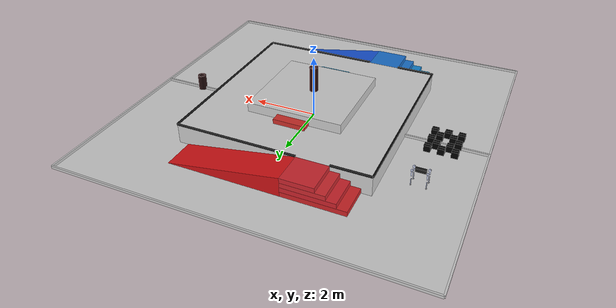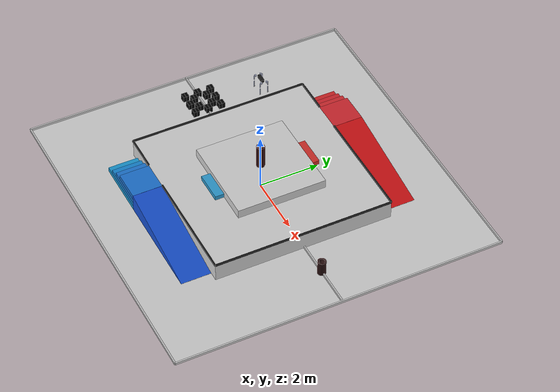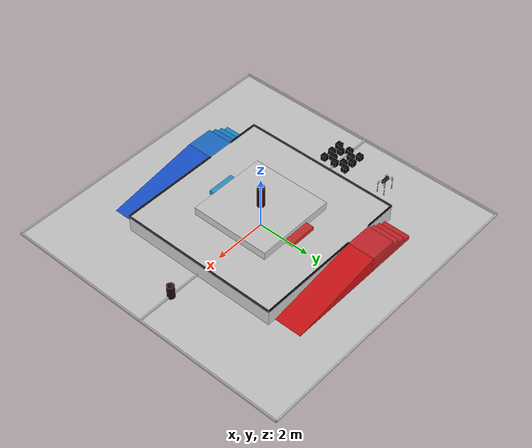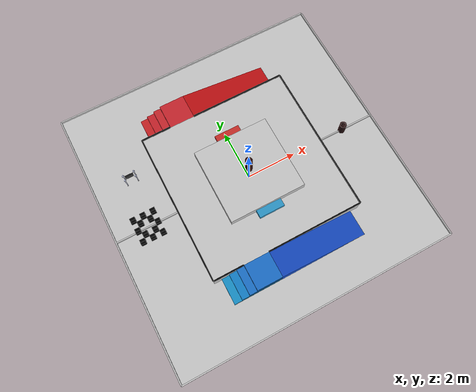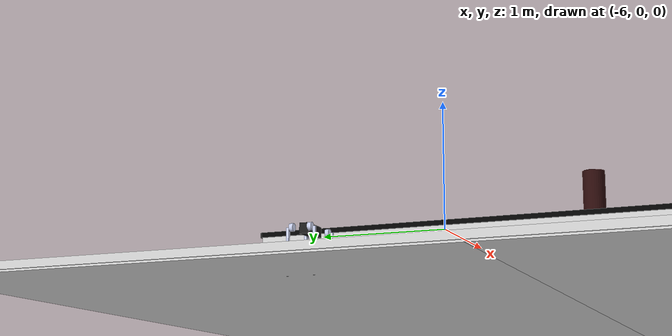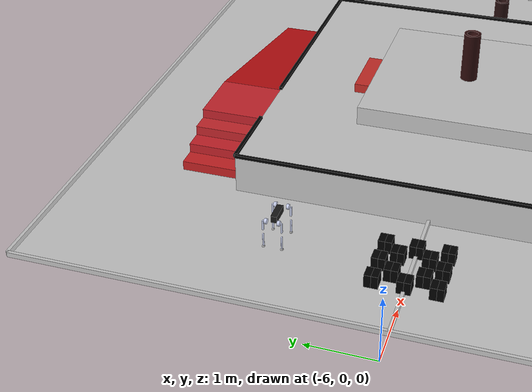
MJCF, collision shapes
<mujoco model="dog robocon scene">
<!-- Dog 在 ROBOCON 场地上跑 — 由 Gazebo robocon_ground 转换的地形 -->
<compiler angle="radian" meshdir="meshes/"/>
<size njmax="500" nconmax="100"/>
<option gravity="0 0 -9.806" iterations="100" solver="Newton" timestep="0.005" integrator="implicitfast"/>

<default>
  <!-- 3 维点接触避免脚掌在台阶棱边产生过强扭转/滚动约束 -->
  <geom contype="1" conaffinity="1" condim="3" friction="0.6 0.005 0.0001" margin="0.001" group="0"/>
  <light castshadow="false" diffuse="1 1 1"/>
  <joint damping="0.01" armature="0.01" frictionloss="0.2"/>
  <camera fovy="60"/>
</default>

<statistic center="0 0 0.5" extent="6.0"/>
<visual>
<headlight diffuse="0.6 0.6 0.6" ambient="0.3 0.3 0.3" specular="0 0 0"/>
<rgba haze="0.15 0.25 0.35 1" com="0.502 1.0 0 0.5" contactforce="0.98 0.4 0.4 0.7" contactpoint="1.0 1.0 0.6 0.4"/>
<global azimuth="-130" elevation="-20"/>
<scale com="0.2" forcewidth="0.035" contactwidth="0.10" contactheight="0.04"/>
</visual>
<asset>
<texture type="skybox" builtin="gradient" rgb1="0.3 0.5 0.7" rgb2="0 0 0" width="512" height="3072"/>

<!-- ROBOCON 场地彩色网格 (按材质拆分, MuJoCo 不支持 MTL/顶点色) -->
<mesh name="robocon_000" file="robocon_000.obj"/>
    <mesh name="robocon_001" file="robocon_001.obj"/>
    <mesh name="robocon_002" file="robocon_002.obj"/>
    <mesh name="robocon_003" file="robocon_003.obj"/>
    <mesh name="robocon_004" file="robocon_004.obj"/>
    <mesh name="robocon_005" file="robocon_005.obj"/>
    <mesh name="robocon_006" file="robocon_006.obj"/>
    <mesh name="robocon_007" file="robocon_007.obj"/>
    <mesh name="robocon_008" file="robocon_008.obj"/>
    <mesh name="robocon_009" file="robocon_009.obj"/>
    <mesh name="robocon_010" file="robocon_010.obj"/>
    <mesh name="robocon_011" file="robocon_011.obj"/>
    <mesh name="robocon_012" file="robocon_012.obj"/>
    <mesh name="robocon_013" file="robocon_013.obj"/>
    <mesh name="robocon_014" file="robocon_014.obj"/>
    <mesh name="robocon_015" file="robocon_015.obj"/>
    <mesh name="robocon_016" file="robocon_016.obj"/>
    <mesh name="robocon_017" file="robocon_017.obj"/>
    <mesh name="robocon_018" file="robocon_018.obj"/>
    <mesh name="robocon_019" file="robocon_019.obj"/>
    <mesh name="robocon_020" file="robocon_020.obj"/>
    <mesh name="robocon_021" file="robocon_021.obj"/>
    <mesh name="robocon_022" file="robocon_022.obj"/>
    <mesh name="robocon_023" file="robocon_023.obj"/>
    <mesh name="robocon_024" file="robocon_024.obj"/>
    <mesh name="robocon_025" file="robocon_025.obj"/>
    <mesh name="robocon_026" file="robocon_026.obj"/>
    <mesh name="robocon_027" file="robocon_027.obj"/>
    <mesh name="robocon_028" file="robocon_028.obj"/>

<!-- dog meshes -->
<mesh name="base"     file="base.STL"/>
<mesh name="ODIN1"    file="ODIN1.STL"/>
<mesh name="FL_hip"   file="FL_hip.STL"/>
<mesh name="FL_thigh" file="FL_thigh.STL"/>
<mesh name="FL_calf"  file="FL_calf.STL"/>
<mesh name="FL_foot"  file="FL_foot.STL"/>
<mesh name="FR_hip"   file="FR_hip.STL"/>
<mesh name="FR_thigh" file="FR_thigh.STL"/>
<mesh name="FR_calf"  file="FR_calf.STL"/>
<mesh name="FR_foot"  file="FR_foot.STL"/>
<mesh name="RR_hip"   file="RR_hip.STL"/>
<mesh name="RR_thigh" file="RR_thigh.STL"/>
<mesh name="RR_calf"  file="RR_calf.STL"/>
<mesh name="RR_foot"  file="RR_foot.STL"/>
<mesh name="RL_hip"   file="RL_hip.STL"/>
<mesh name="RL_thigh" file="RL_thigh.STL"/>
<mesh name="RL_calf"  file="RL_calf.STL"/>
<mesh name="RL_foot"  file="RR_foot.STL"/>
</asset>
<worldbody>
<light pos="0 0 8" dir="0 0 -1" directional="true" />
<camera name="track" mode="trackcom" pos="-3 -1.3 1.6" xyaxes="1 0 0 0 0.707 0.707"/>

<!-- ================= ROBOCON 场地 ================= -->
<body name="robocon_ground" pos="0 0 0">
  <!-- 视觉：整个场地的彩色网格（红蓝半场、起点等），不参与碰撞 -->
  <!-- 单一封闭凸网格：渲染网格同时作为精确碰撞体 -->
  <geom name="robocon_000_v" type="mesh" mesh="robocon_000" rgba="0.14 0.05 0.05 1" contype="1" conaffinity="1" group="2"/>
  <geom name="robocon_001_v" type="mesh" mesh="robocon_001" rgba="0.17 0.04 0.04 1" contype="1" conaffinity="1" group="2"/>
  <geom name="robocon_002_v" type="mesh" mesh="robocon_002" rgba="0.8 0 0 1" contype="0" conaffinity="0" group="2"/>
  <geom name="robocon_003_v" type="mesh" mesh="robocon_003" rgba="0 0 0.8 1" contype="0" conaffinity="0" group="2"/>
  <geom name="robocon_004_v" type="mesh" mesh="robocon_004" rgba="0.11 0 0 1" contype="0" conaffinity="0" group="2"/>
  <geom name="robocon_005_v" type="mesh" mesh="robocon_005" rgba="0.8 0.8 0.8 1" contype="0" conaffinity="0" group="2"/>
  <geom name="robocon_006_v" type="mesh" mesh="robocon_006" rgba="0.14 0 0 1" contype="0" conaffinity="0" group="2"/>
  <geom name="robocon_007_v" type="mesh" mesh="robocon_007" rgba="0.12 0 0 1" contype="0" conaffinity="0" group="2"/>
  <geom name="robocon_008_v" type="mesh" mesh="robocon_008" rgba="0 0.17 0 1" contype="0" conaffinity="0" group="2"/>
  <!-- 两侧斜坡、阶梯和高台小障碍都是独立封闭凸体 -->
  <geom name="robocon_009_v" type="mesh" mesh="robocon_009" rgba="0.8 0.07 0.08 1" contype="1" conaffinity="1" group="2"/>
  <geom name="robocon_010_v" type="mesh" mesh="robocon_010" rgba="0.8 0.14 0.15 1" contype="1" conaffinity="1" group="2"/>
  <geom name="robocon_011_v" type="mesh" mesh="robocon_011" rgba="0.8 0.14 0.17 1" contype="1" conaffinity="1" group="2"/>
  <geom name="robocon_012_v" type="mesh" mesh="robocon_012" rgba="0.8 0.16 0.18 1" contype="1" conaffinity="1" group="2"/>
  <geom name="robocon_013_v" type="mesh" mesh="robocon_013" rgba="0.8 0.15 0.18 1" contype="1" conaffinity="1" group="2"/>
  <geom name="robocon_014_v" type="mesh" mesh="robocon_014" rgba="0.09 0.31 0.8 1" contype="1" conaffinity="1" group="2"/>
  <geom name="robocon_015_v" type="mesh" mesh="robocon_015" rgba="0.1 0.58 0.8 1" contype="1" conaffinity="1" group="2"/>
  <geom name="robocon_016_v" type="mesh" mesh="robocon_016" rgba="0.08 0.51 0.8 1" contype="1" conaffinity="1" group="2"/>
  <geom name="robocon_017_v" type="mesh" mesh="robocon_017" rgba="0.11 0.45 0.8 1" contype="1" conaffinity="1" group="2"/>
  <geom name="robocon_018_v" type="mesh" mesh="robocon_018" rgba="0.11 0.44 0.8 1" contype="1" conaffinity="1" group="2"/>
  <geom name="robocon_019_v" type="mesh" mesh="robocon_019" rgba="0.8 0.18 0.16 1" contype="1" conaffinity="1" group="2"/>
  <geom name="robocon_020_v" type="mesh" mesh="robocon_020" rgba="0.18 0.6 0.8 1" contype="1" conaffinity="1" group="2"/>
  <geom name="robocon_021_v" type="mesh" mesh="robocon_021" rgba="0.8 0.4 0.32 1" contype="0" conaffinity="0" group="2"/>
  <geom name="robocon_022_v" type="mesh" mesh="robocon_022" rgba="0.34 0.65 0.8 1" contype="0" conaffinity="0" group="2"/>
  <geom name="robocon_023_v" type="mesh" mesh="robocon_023" rgba="0.8 0.72 0.33 1" contype="0" conaffinity="0" group="2"/>
  <geom name="robocon_024_v" type="mesh" mesh="robocon_024" rgba="0.8 0.18 0.19 1" contype="0" conaffinity="0" group="2"/>
  <geom name="robocon_025_v" type="mesh" mesh="robocon_025" rgba="0.17 0.63 0.8 1" contype="0" conaffinity="0" group="2"/>
  <geom name="robocon_026_v" type="mesh" mesh="robocon_026" rgba="0.01 0.01 0.8 1" contype="0" conaffinity="0" group="2"/>
  <geom name="robocon_027_v" type="mesh" mesh="robocon_027" rgba="0.14 0.02 0.02 1" contype="0" conaffinity="0" group="2"/>
  <geom name="robocon_028_v" type="mesh" mesh="robocon_028" rgba="0.13 0 0 1" contype="0" conaffinity="0" group="2"/>

  <!-- 1. 红方半场：视觉网格中 y>0，11(x) x 5.5(y) -->
  <geom name="robocon_ground_red" type="box" pos="0 2.75 -0.01" size="5.5 2.75 0.01" rgba="0.8 0.8 0.8 0" group="3"/>

  <!-- 2. 蓝方半场：视觉网格中 y<0，11(x) x 5.5(y) -->
  <geom name="robocon_ground_blue" type="box" pos="0 -2.75 -0.01" size="5.5 2.75 0.01" rgba="0.8 0.8 0.8 0" group="3"/>

  <!-- 3. 中央隔板 11 x 0.05 x 0.08 -->
  <geom name="robocon_center_divider" type="box" pos="0 0 0.04" size="5.5 0.025 0.04" rgba="0.8 0.8 0.8 0" group="3"/>

  <!-- 4. 前围栏 (Y-) -->
  <geom name="robocon_wall_front" type="box" pos="0 -5.5 0.04" size="5.5 0.025 0.04" rgba="0.8 0.8 0.8 0" group="3"/>

  <!-- 5. 后围栏 (Y+) -->
  <geom name="robocon_wall_back" type="box" pos="0 5.5 0.04" size="5.5 0.025 0.04" rgba="0.8 0.8 0.8 0" group="3"/>

  <!-- 6. 左围栏 (X-) -->
  <geom name="robocon_wall_left" type="box" pos="-5.5 0 0.04" size="0.025 5.5 0.04" rgba="0.8 0.8 0.8 0" group="3"/>

  <!-- 7. 右围栏 (X+) -->
  <geom name="robocon_wall_right" type="box" pos="5.5 0 0.04" size="0.025 5.5 0.04" rgba="0.8 0.8 0.8 0" group="3"/>

  <!-- 8. 五色石基座 圆柱 r=0.135, h=0.5 -->
  <geom name="robocon_stone_base" type="cylinder" pos="0 0 0.25" size="0.135 0.25" rgba="0.8 0.8 0.8 0" group="3"/>

  <!-- 9. L1 层高台 6 x 6，实体碰撞从地面到视觉顶面 z=0.602 -->
  <geom name="robocon_l1" type="box" pos="0 0 0.301" size="3 3 0.301" rgba="0.8 0.8 0.8 0" group="3"/>

  <!-- 10. L2 层高台 3 x 3，实体碰撞从 L1 到视觉顶面 z=0.901 -->
  <geom name="robocon_l2" type="box" pos="0 0 0.7515" size="1.5 1.5 0.1495" rgba="0.8 0.8 0.8 0" group="3"/>

  <!-- 红蓝棋子阵列：按视觉网格的每个独立方块生成碰撞体 -->
  <geom name="robocon_detail_002_00" type="box" pos="-3.8 -0.5 0.13" size="0.1 0.05 0.1" rgba="0 0 0 0" group="3"/>
  <geom name="robocon_detail_002_01" type="box" pos="-3.8 -0.05 0.13" size="0.1 0.05 0.1" rgba="0 0 0 0" group="3"/>
  <geom name="robocon_detail_002_02" type="box" pos="-3.8 0.4 0.13" size="0.1 0.05 0.1" rgba="0 0 0 0" group="3"/>
  <geom name="robocon_detail_002_03" type="box" pos="-4 0.175 0.13" size="0.1 0.05 0.1" rgba="0 0 0 0" group="3"/>
  <geom name="robocon_detail_002_04" type="box" pos="-4 -0.275 0.13" size="0.1 0.05 0.1" rgba="0 0 0 0" group="3"/>
  <geom name="robocon_detail_002_05" type="box" pos="-4.2 0.4 0.13" size="0.1 0.05 0.1" rgba="0 0 0 0" group="3"/>
  <geom name="robocon_detail_002_06" type="box" pos="-4.2 -0.5 0.13" size="0.1 0.05 0.1" rgba="0 0 0 0" group="3"/>
  <geom name="robocon_detail_002_07" type="box" pos="-4.4 0.175 0.13" size="0.1 0.05 0.1" rgba="0 0 0 0" group="3"/>
  <geom name="robocon_detail_002_08" type="box" pos="-4.4 -0.275 0.13" size="0.1 0.05 0.1" rgba="0 0 0 0" group="3"/>
  <geom name="robocon_detail_002_09" type="box" pos="-4.6 0.4 0.13" size="0.1 0.05 0.1" rgba="0 0 0 0" group="3"/>
  <geom name="robocon_detail_002_10" type="box" pos="-4.6 -0.05 0.13" size="0.1 0.05 0.1" rgba="0 0 0 0" group="3"/>
  <geom name="robocon_detail_002_11" type="box" pos="-4.6 -0.5 0.13" size="0.1 0.05 0.1" rgba="0 0 0 0" group="3"/>
  <geom name="robocon_detail_003_00" type="box" pos="-3.8 -0.4 0.13" size="0.1 0.05 0.1" rgba="0 0 0 0" group="3"/>
  <geom name="robocon_detail_003_01" type="box" pos="-3.8 0.05 0.13" size="0.1 0.05 0.1" rgba="0 0 0 0" group="3"/>
  <geom name="robocon_detail_003_02" type="box" pos="-3.8 0.5 0.13" size="0.1 0.05 0.1" rgba="0 0 0 0" group="3"/>
  <geom name="robocon_detail_003_03" type="box" pos="-4 0.275 0.13" size="0.1 0.05 0.1" rgba="0 0 0 0" group="3"/>
  <geom name="robocon_detail_003_04" type="box" pos="-4 -0.175 0.13" size="0.1 0.05 0.1" rgba="0 0 0 0" group="3"/>
  <geom name="robocon_detail_003_05" type="box" pos="-4.2 0.5 0.13" size="0.1 0.05 0.1" rgba="0 0 0 0" group="3"/>
  <geom name="robocon_detail_003_06" type="box" pos="-4.2 -0.4 0.13" size="0.1 0.05 0.1" rgba="0 0 0 0" group="3"/>
  <geom name="robocon_detail_003_07" type="box" pos="-4.4 0.275 0.13" size="0.1 0.05 0.1" rgba="0 0 0 0" group="3"/>
  <geom name="robocon_detail_003_08" type="box" pos="-4.4 -0.175 0.13" size="0.1 0.05 0.1" rgba="0 0 0 0" group="3"/>
  <geom name="robocon_detail_003_09" type="box" pos="-4.6 0.5 0.13" size="0.1 0.05 0.1" rgba="0 0 0 0" group="3"/>
  <geom name="robocon_detail_003_10" type="box" pos="-4.6 0.05 0.13" size="0.1 0.05 0.1" rgba="0 0 0 0" group="3"/>
  <geom name="robocon_detail_003_11" type="box" pos="-4.6 -0.4 0.13" size="0.1 0.05 0.1" rgba="0 0 0 0" group="3"/>

  <!-- L1 围边：匹配网格中的开口，不挡住斜坡/阶梯入口 -->
  <geom name="robocon_l1_rail_left" type="box" pos="-3 0 0.625" size="0.025 3 0.025" rgba="0 0 0 0" group="3"/>
  <geom name="robocon_l1_rail_right" type="box" pos="3 0 0.625" size="0.025 3 0.025" rgba="0 0 0 0" group="3"/>
  <geom name="robocon_l1_rail_north_a" type="box" pos="1.1 3 0.625" size="1.9 0.025 0.025" rgba="0 0 0 0" group="3"/>
  <geom name="robocon_l1_rail_north_b" type="box" pos="-2.4 3 0.625" size="0.6 0.025 0.025" rgba="0 0 0 0" group="3"/>
  <geom name="robocon_l1_rail_south_a" type="box" pos="1.1 -3 0.625" size="1.9 0.025 0.025" rgba="0 0 0 0" group="3"/>
  <geom name="robocon_l1_rail_south_b" type="box" pos="-2.4 -3 0.625" size="0.6 0.025 0.025" rgba="0 0 0 0" group="3"/>
</body>

<!-- ============ Dog Robot (出生在红方半场，机身朝向 +X) ============ -->
<body name="trunk" pos="-4.0 2.0 0.45" quat="1 0 0 0">
  <inertial pos="0.0063754 0 0" quat="1 0 0 0" mass="4.74" diaginertia="0.018108 0.039024 0.048926"/>
  <joint type="free"/>
  <geom type="mesh" mesh="base" contype="0" conaffinity="0" group="1" rgba="0.10196 0.10196 0.10196 1"/>
  <geom size="0.1531 0.04675 0.052" type="box" rgba="0.10196 0.10196 0.10196 0"/>
  <geom type="mesh" mesh="ODIN1" pos="0.21725 0 0.1165" contype="0" conaffinity="0" group="1" rgba="1 1 1 1"/>
  <site name="imu" pos="0 0 0"/>

  <!-- FL Leg -->
  <body name="FL_hip" pos="0.2145 0.05 0">
    <inertial pos="-0.010697 -0.0033174 0" quat="0.483303 0.483303 0.516157 0.516157" mass="0.33292" diaginertia="0.000342408 0.00025417 0.000178192"/>
    <joint name="FL_hip_joint" pos="0 0 0" axis="-1 0 0" range="-1.05 1.05" actuatorfrcrange="-17 17"/>
    <geom type="mesh" mesh="FL_hip" contype="0" conaffinity="0" group="1" rgba="0.79216 0.81961 0.93333 1"/>
    <geom size="0.04 0.02" pos="0 0.045 0" quat="0.707105 0.707108 0 0" type="cylinder" rgba="0.79216 0.81961 0.93333 0"/>
    <body name="FL_thigh" pos="0 0.088 0">
      <inertial pos="-0.0069171 -0.014196 -0.040905" quat="0.937237 -0.0612753 -0.0854854 -0.332451" mass="1.5467" diaginertia="0.00673267 0.0061914 0.00123923"/>
      <joint name="FL_thigh_joint" pos="0 0 0" axis="0 -1 0" range="-1.57 3.49" actuatorfrcrange="-17 17"/>
      <geom type="mesh" mesh="FL_thigh" contype="0" conaffinity="0" group="1" rgba="0.79216 0.81961 0.93333 1"/>
      <geom size="0.075 0.01225 0.017" pos="0 0 -0.075" quat="0.707105 0 0.707108 0" type="box" rgba="0.79216 0.81961 0.93333 0"/>
      <body name="FL_calf" pos="0 0 -0.22">
        <inertial pos="0.011153 4.09347e-10 -0.144935" quat="0.706789 0.0212082 0.0212082 0.706789" mass="0.1266" diaginertia="0.00082574 0.00081761 1.7692e-05"/>
        <joint name="FL_calf_joint" pos="0 0 0" axis="0 1 0" range="-2.72 -1" actuatorfrcrange="-34 34"/>
        <geom type="mesh" mesh="FL_calf" contype="0" conaffinity="0" group="1" rgba="0.79216 0.81961 0.93333 1"/>
        <geom name="FL_calf_col" type="capsule" fromto="0 0 -0.015 0.001 0 -0.205" size="0.014" rgba="0.79216 0.81961 0.93333 0"/>
        <geom type="mesh" mesh="FL_foot" pos="0.001 0 -0.22349" contype="0" conaffinity="0" group="1" rgba="0.69804 0.69804 0.69804 1"/>
        <geom name="FL_foot_col" type="sphere" size="0.024" pos="0 0 -0.22849" rgba="0.69804 0.69804 0.69804 0"/>
      </body>
    </body>
  </body>

  <!-- FR Leg -->
  <body name="FR_hip" pos="0.2145 -0.05 0">
    <inertial pos="-0.010697 0.0033174 0" quat="0.516157 0.516157 0.483303 0.483303" mass="0.33292" diaginertia="0.000342408 0.00025417 0.000178192"/>
    <joint name="FR_hip_joint" pos="0 0 0" axis="-1 0 0" range="-1.05 1.05" actuatorfrcrange="-17 17"/>
    <geom type="mesh" mesh="FR_hip" contype="0" conaffinity="0" group="1" rgba="0.79216 0.81961 0.93333 1"/>
    <geom size="0.04 0.02" pos="0 -0.045 0" quat="0.707105 0.707108 0 0" type="cylinder" rgba="0.79216 0.81961 0.93333 0"/>
    <body name="FR_thigh" pos="0 -0.088 0">
      <inertial pos="-0.0069171 0.014196 -0.040905" quat="0.937237 0.0612753 -0.0854854 0.332451" mass="1.5467" diaginertia="0.00673267 0.0061914 0.00123923"/>
      <joint name="FR_thigh_joint" pos="0 0 0" axis="0 1 0" range="-1.57 3.49" actuatorfrcrange="-17 17"/>
      <geom type="mesh" mesh="FR_thigh" contype="0" conaffinity="0" group="1" rgba="0.79216 0.81961 0.93333 1"/>
      <geom size="0.075 0.01225 0.017" pos="0 0 -0.075" quat="0.707105 0 0.707108 0" type="box" rgba="0.79216 0.81961 0.93333 0"/>
      <body name="FR_calf" pos="0 0 -0.22">
        <inertial pos="0.011153 4.14072e-10 -0.144935" quat="0.706788 0.0212297 0.0212297 0.706788" mass="0.1266" diaginertia="0.00082574 0.00081755 1.7749e-05"/>
        <joint name="FR_calf_joint" pos="0 0 0" axis="0 -1 0" range="1 2.72" actuatorfrcrange="-34 34"/>
        <geom type="mesh" mesh="FR_calf" contype="0" conaffinity="0" group="1" rgba="0.79216 0.81961 0.93333 1"/>
        <geom name="FR_calf_col" type="capsule" fromto="0 0 -0.015 0.001 0 -0.205" size="0.014" rgba="0.79216 0.81961 0.93333 0"/>
        <geom type="mesh" mesh="FR_foot" pos="0.001 0 -0.22349" contype="0" conaffinity="0" group="1" rgba="0.69804 0.69804 0.69804 1"/>
        <geom name="FR_foot_col" type="sphere" size="0.024" pos="0 0 -0.22849" rgba="0.69804 0.69804 0.69804 0"/>
      </body>
    </body>
  </body>

  <!-- RR Leg -->
  <body name="RR_hip" pos="-0.2145 -0.05 0">
    <inertial pos="0.010697 0.0033174 0" quat="0.483303 0.483303 0.516157 0.516157" mass="0.33292" diaginertia="0.000342408 0.00025417 0.000178192"/>
    <joint name="RR_hip_joint" pos="0 0 0" axis="1 0 0" range="-1.05 1.05" actuatorfrcrange="-17 17"/>
    <geom type="mesh" mesh="RR_hip" contype="0" conaffinity="0" group="1" rgba="0.79216 0.81961 0.93333 1"/>
    <geom size="0.04 0.02" pos="0 -0.045 0" quat="0.707105 0.707108 0 0" type="cylinder" rgba="0.79216 0.81961 0.93333 0"/>
    <body name="RR_thigh" pos="0 -0.088 0">
      <inertial pos="-0.0069171 0.014196 -0.040905" quat="0.937237 0.0612753 -0.0854854 0.332451" mass="1.5467" diaginertia="0.00673267 0.0061914 0.00123923"/>
      <joint name="RR_thigh_joint" pos="0 0 0" axis="0 1 0" range="-1.57 3.49" actuatorfrcrange="-17 17"/>
      <geom type="mesh" mesh="RR_thigh" contype="0" conaffinity="0" group="1" rgba="0.79216 0.81961 0.93333 1"/>
      <geom size="0.075 0.01225 0.017" pos="0 0 -0.075" quat="0.707105 0 0.707108 0" type="box" rgba="0.79216 0.81961 0.93333 0"/>
      <body name="RR_calf" pos="0 0 -0.22">
        <inertial pos="0.011153 4.14072e-10 -0.144935" quat="0.706788 0.0212297 0.0212297 0.706788" mass="0.1266" diaginertia="0.00082574 0.00081755 1.7749e-05"/>
        <joint name="RR_calf_joint" pos="0 0 0" axis="0 -1 0" range="1 2.72" actuatorfrcrange="-34 34"/>
        <geom type="mesh" mesh="RR_calf" contype="0" conaffinity="0" group="1" rgba="0.79216 0.81961 0.93333 1"/>
        <geom name="RR_calf_col" type="capsule" fromto="0 0 -0.015 0.001 0 -0.205" size="0.014" rgba="0.79216 0.81961 0.93333 0"/>
        <geom type="mesh" mesh="RR_foot" pos="0.001 0 -0.22349" contype="0" conaffinity="0" group="1" rgba="0.69804 0.69804 0.69804 1"/>
        <geom name="RR_foot_col" type="sphere" size="0.024" pos="0 0 -0.22849" rgba="0.69804 0.69804 0.69804 0"/>
      </body>
    </body>
  </body>

  <!-- RL Leg -->
  <body name="RL_hip" pos="-0.2145 0.05 0">
    <inertial pos="0.010697 -0.0033174 0" quat="0.516157 0.516157 0.483303 0.483303" mass="0.33292" diaginertia="0.000342408 0.00025417 0.000178192"/>
    <joint name="RL_hip_joint" pos="0 0 0" axis="1 0 0" range="-1.05 1.05" actuatorfrcrange="-17 17"/>
    <geom type="mesh" mesh="RL_hip" contype="0" conaffinity="0" group="1" rgba="0.79216 0.81961 0.93333 1"/>
    <geom size="0.04 0.02" pos="0 0.045 0" quat="0.707105 0.707108 0 0" type="cylinder" rgba="0.79216 0.81961 0.93333 0"/>
    <body name="RL_thigh" pos="0 0.088 0">
      <inertial pos="-0.0069171 -0.014196 -0.040905" quat="0.937237 -0.0612753 -0.0854854 -0.332451" mass="1.5467" diaginertia="0.00673267 0.0061914 0.00123923"/>
      <joint name="RL_thigh_joint" pos="0 0 0" axis="0 -1 0" range="-1.57 3.49" actuatorfrcrange="-17 17"/>
      <geom type="mesh" mesh="RL_thigh" contype="0" conaffinity="0" group="1" rgba="0.79216 0.81961 0.93333 1"/>
      <geom size="0.075 0.01225 0.017" pos="0 0 -0.075" quat="0.707105 0 0.707108 0" type="box" rgba="0.79216 0.81961 0.93333 0"/>
      <body name="RL_calf" pos="0 0 -0.22">
        <inertial pos="0.0111521 4.07726e-10 -0.144935" quat="0.706788 0.021234 0.021234 0.706788" mass="0.1266" diaginertia="0.00082574 0.00081756 1.7750e-05"/>
        <joint name="RL_calf_joint" pos="0 0 0" axis="0 1 0" range="-2.72 -1" actuatorfrcrange="-34 34"/>
        <geom type="mesh" mesh="RL_calf" contype="0" conaffinity="0" group="1" rgba="0.79216 0.81961 0.93333 1"/>
        <geom name="RL_calf_col" type="capsule" fromto="0 0 -0.015 0.001 0 -0.205" size="0.014" rgba="0.79216 0.81961 0.93333 0"/>
        <geom type="mesh" mesh="RL_foot" pos="0.001 0 -0.22349" contype="0" conaffinity="0" group="1" rgba="0.69804 0.69804 0.69804 1"/>
        <geom name="RL_foot_col" type="sphere" size="0.024" pos="0 0 -0.22849" rgba="0.69804 0.69804 0.69804 0"/>
      </body>
    </body>
  </body>

</body><!-- end trunk -->

</worldbody>

<!-- ============ Actuators ============ -->
<actuator>
  <motor name="FL_hip"   gear="1" joint="FL_hip_joint"   ctrlrange="-23.7 23.7"   ctrllimited="true"/>
  <motor name="FL_thigh" gear="1" joint="FL_thigh_joint" ctrlrange="-23.7 23.7"   ctrllimited="true"/>
  <motor name="FL_calf"  gear="1" joint="FL_calf_joint"  ctrlrange="-35.55 35.55" ctrllimited="true"/>
  <motor name="FR_hip"   gear="1" joint="FR_hip_joint"   ctrlrange="-23.7 23.7"   ctrllimited="true"/>
  <motor name="FR_thigh" gear="1" joint="FR_thigh_joint" ctrlrange="-23.7 23.7"   ctrllimited="true"/>
  <motor name="FR_calf"  gear="1" joint="FR_calf_joint"  ctrlrange="-35.55 35.55" ctrllimited="true"/>
  <motor name="RR_hip"   gear="1" joint="RR_hip_joint"   ctrlrange="-23.7 23.7"   ctrllimited="true"/>
  <motor name="RR_thigh" gear="1" joint="RR_thigh_joint" ctrlrange="-23.7 23.7"   ctrllimited="true"/>
  <motor name="RR_calf"  gear="1" joint="RR_calf_joint"  ctrlrange="-35.55 35.55" ctrllimited="true"/>
  <motor name="RL_hip"   gear="1" joint="RL_hip_joint"   ctrlrange="-23.7 23.7"   ctrllimited="true"/>
  <motor name="RL_thigh" gear="1" joint="RL_thigh_joint" ctrlrange="-23.7 23.7"   ctrllimited="true"/>
  <motor name="RL_calf"  gear="1" joint="RL_calf_joint"  ctrlrange="-35.55 35.55" ctrllimited="true"/>
</actuator>

<!-- ============ Sensors ============ -->
<sensor>
  <jointpos name="FL_hip_pos"   joint="FL_hip_joint"/>
  <jointpos name="FL_thigh_pos" joint="FL_thigh_joint"/>
  <jointpos name="FL_calf_pos"  joint="FL_calf_joint"/>
  <jointpos name="FR_hip_pos"   joint="FR_hip_joint"/>
  <jointpos name="FR_thigh_pos" joint="FR_thigh_joint"/>
  <jointpos name="FR_calf_pos"  joint="FR_calf_joint"/>
  <jointpos name="RR_hip_pos"   joint="RR_hip_joint"/>
  <jointpos name="RR_thigh_pos" joint="RR_thigh_joint"/>
  <jointpos name="RR_calf_pos"  joint="RR_calf_joint"/>
  <jointpos name="RL_hip_pos"   joint="RL_hip_joint"/>
  <jointpos name="RL_thigh_pos" joint="RL_thigh_joint"/>
  <jointpos name="RL_calf_pos"  joint="RL_calf_joint"/>

  <jointvel name="FL_hip_vel"   joint="FL_hip_joint"/>
  <jointvel name="FL_thigh_vel" joint="FL_thigh_joint"/>
  <jointvel name="FL_calf_vel"  joint="FL_calf_joint"/>
  <jointvel name="FR_hip_vel"   joint="FR_hip_joint"/>
  <jointvel name="FR_thigh_vel" joint="FR_thigh_joint"/>
  <jointvel name="FR_calf_vel"  joint="FR_calf_joint"/>
  <jointvel name="RR_hip_vel"   joint="RR_hip_joint"/>
  <jointvel name="RR_thigh_vel" joint="RR_thigh_joint"/>
  <jointvel name="RR_calf_vel"  joint="RR_calf_joint"/>
  <jointvel name="RL_hip_vel"   joint="RL_hip_joint"/>
  <jointvel name="RL_thigh_vel" joint="RL_thigh_joint"/>
  <jointvel name="RL_calf_vel"  joint="RL_calf_joint"/>

  <accelerometer name="Body_Acc"  site="imu"/>
  <gyro          name="Body_Gyro" site="imu"/>
  <framepos      name="Body_Pos"  objtype="site" objname="imu"/>
  <framequat     name="Body_Quat" objtype="site" objname="imu"/>
</sensor>

</mujoco>
